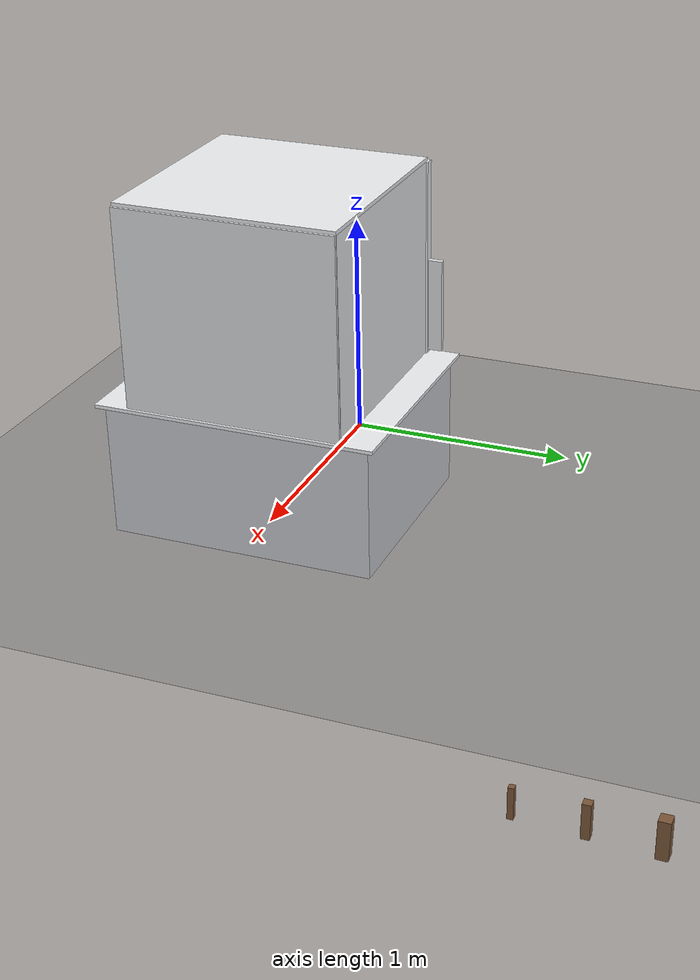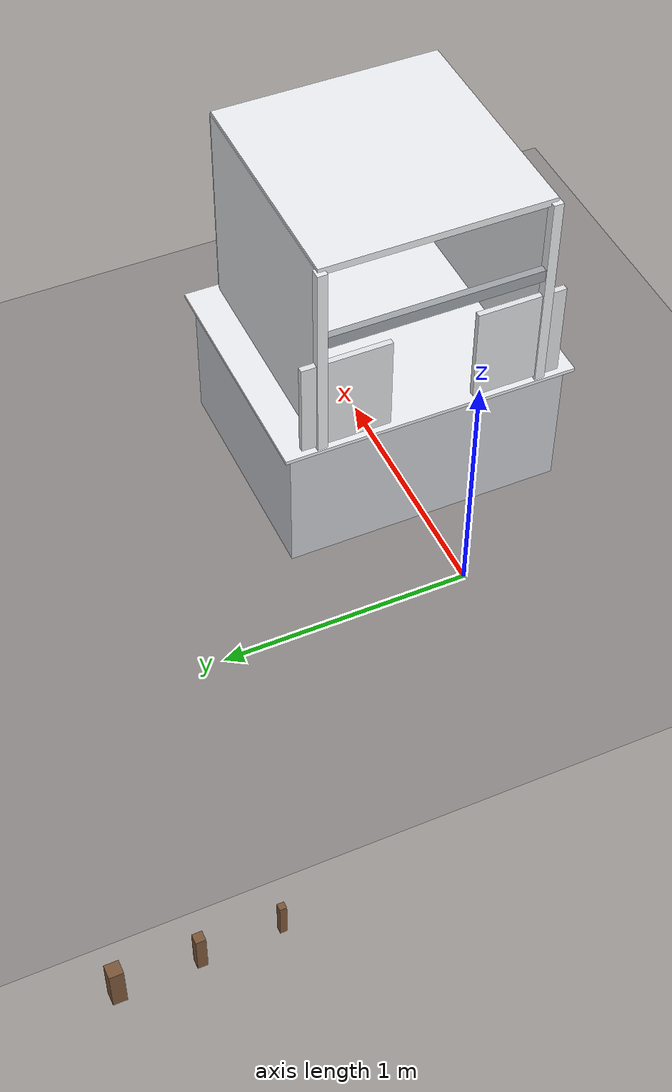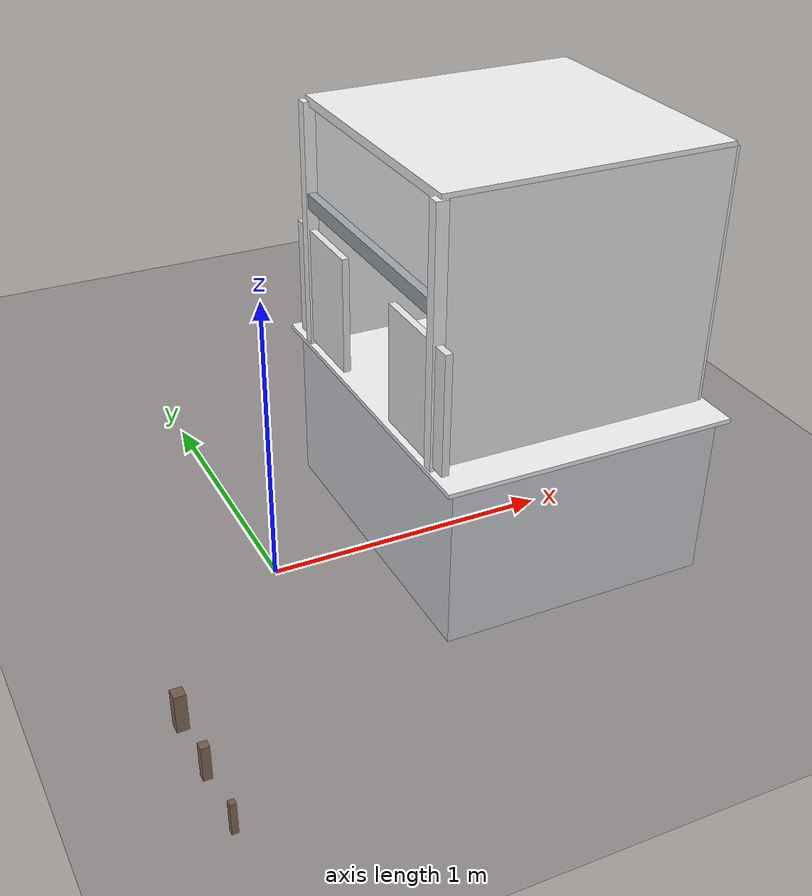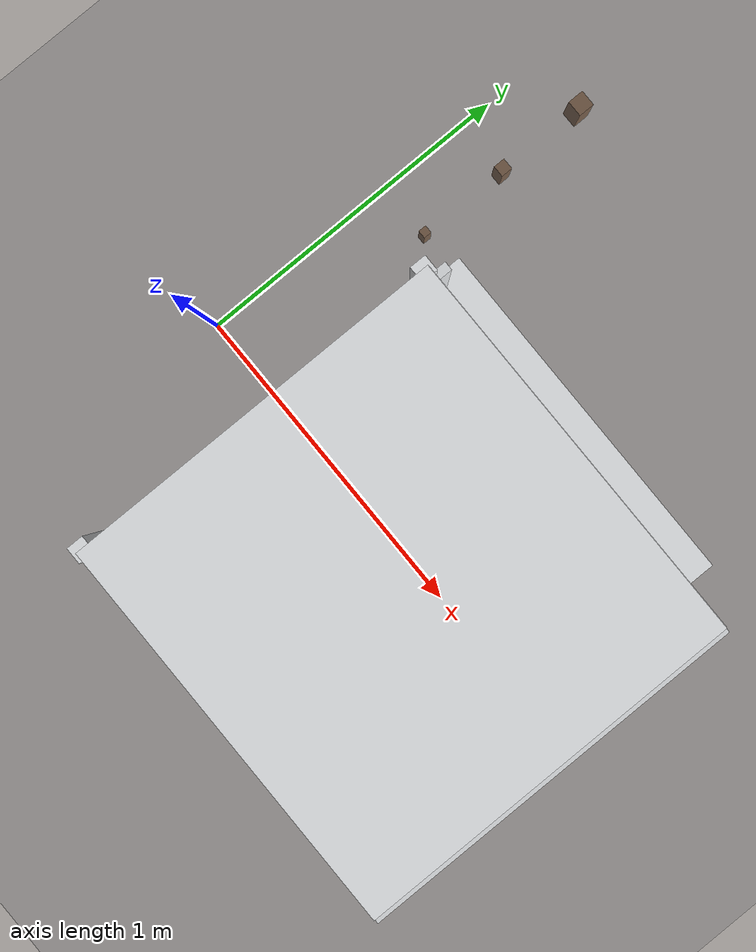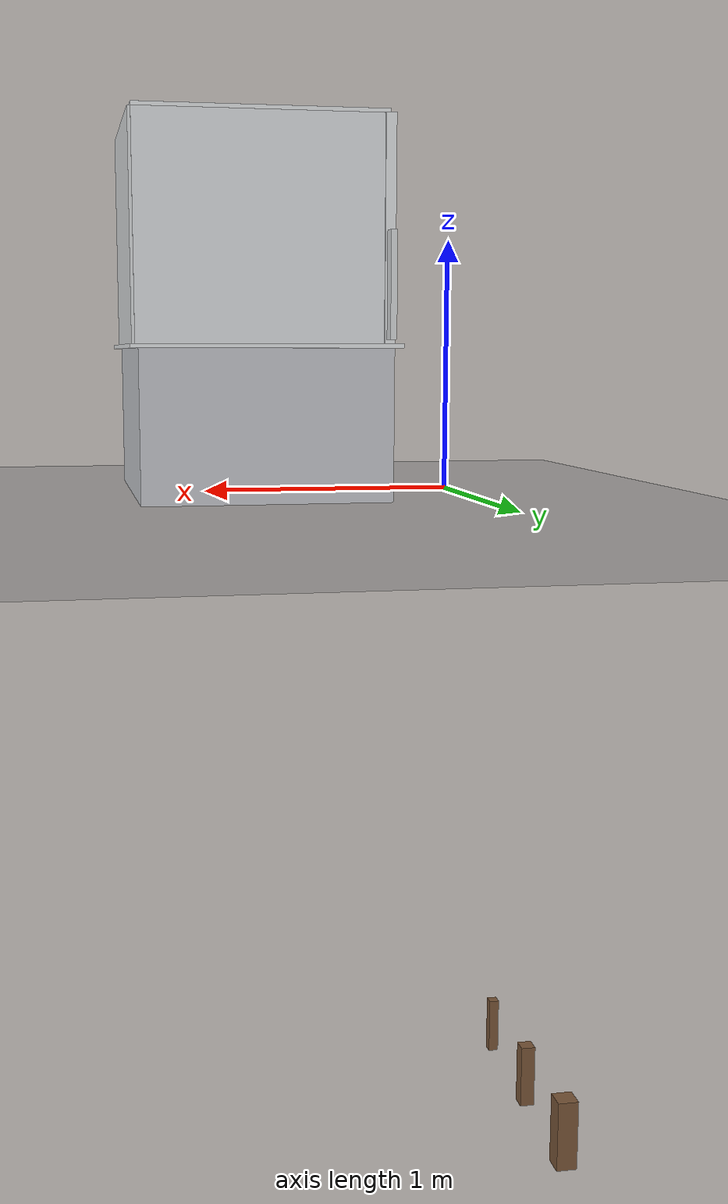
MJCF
<mujoco model="fumehood_tour">
  <size njmax="6000" nconmax="6000"/>
  <asset>
    <texture name="floortex" type="2d" builtin="checker" rgb1="0.46 0.46 0.48" rgb2="0.40 0.40 0.42" width="300" height="300"/>
    <material name="floormat" texture="floortex" texrepeat="10 10" reflectance="0.05"/>
    <material name="bench" rgba="0.62 0.55 0.45 1"/>
  </asset>
  <default>
    <default class="hood">
      <geom contype="8" conaffinity="15" group="0" friction="0.9 0.9 0.001"
            solref="0.02 1" solimp="0.998 0.998 0.001" density="700" rgba="0.92 0.93 0.94 1"/>
    </default>
  </default>
  <worldbody>
    <light name="l_key" pos="0.4 0.5 2.6" dir="0 0 -1" diffuse="0.95 0.95 0.95"/>
    <light name="l_fill" pos="-0.6 -0.7 2.1" dir="0.3 0.3 -1" diffuse="0.5 0.5 0.5"/>
    <light name="l_hood" pos="0.75 0 1.45" dir="0 0 -1" diffuse="0.6 0.6 0.6"/>
    <geom name="floor" type="plane" size="5 5 0.1" pos="0 0 0" material="floormat" contype="8" conaffinity="15"/>
    <geom name="bench_top" class="hood" type="box" pos="0.825 0 0.5775" size="0.50 0.60 0.0075" material="bench"/>
    <geom name="bench_body" class="hood" type="box" pos="0.825 0 0.285" size="0.47 0.57 0.285" rgba="0.80 0.81 0.83 1"/>
    <geom name="hood_side_l" class="hood" type="box" pos="0.825 0.45 1.0" size="0.475 0.012 0.42" rgba="0.90 0.91 0.92 1"/>
    <geom name="hood_side_r" class="hood" type="box" pos="0.825 -0.45 1.0" size="0.475 0.012 0.42" rgba="0.90 0.91 0.92 1"/>
    <geom name="hood_back"  class="hood" type="box" pos="1.30 0 1.0" size="0.012 0.46 0.42" rgba="0.88 0.89 0.90 1"/>
    <geom name="hood_top"   class="hood" type="box" pos="0.825 0 1.42" size="0.475 0.46 0.015"/>
    <geom name="hood_frame_l" class="hood" type="box" pos="0.35 0.45 1.0" size="0.02 0.02 0.42"/>
    <geom name="hood_frame_r" class="hood" type="box" pos="0.35 -0.45 1.0" size="0.02 0.02 0.42"/>
    <!-- SASH RAIL (opaque): bottom edge = opening height -->
    <body name="sash" mocap="true" pos="0.35 0 1.10">
      <geom name="sash_g" class="hood" type="box" size="0.015 0.44 0.025" rgba="0.62 0.64 0.66 1"/>
    </body>
    <body name="jamb_l" mocap="true" pos="0.35 0.35 0.80">
      <geom name="jamb_l_g" class="hood" type="box" size="0.012 0.18 0.20" rgba="0.88 0.89 0.90 1"/>
    </body>
    <body name="jamb_r" mocap="true" pos="0.35 -0.35 0.80">
      <geom name="jamb_r_g" class="hood" type="box" size="0.012 0.18 0.20" rgba="0.88 0.89 0.90 1"/>
    </body>
    <!-- interior obstacle bars (posed per episode) -->
    <body name="protr_s" mocap="true" pos="0 0.8 -2.0">
      <geom name="protr_s_g" class="hood" type="box" size="0.0175 0.0175 0.10" rgba="0.48 0.34 0.22 1"/>
    </body>
    <body name="protr_m" mocap="true" pos="0 1.2 -2.0">
      <geom name="protr_m_g" class="hood" type="box" size="0.025 0.025 0.11" rgba="0.48 0.34 0.22 1"/>
    </body>
    <body name="protr_l" mocap="true" pos="0 1.6 -2.0">
      <geom name="protr_l_g" class="hood" type="box" size="0.035 0.035 0.12" rgba="0.48 0.34 0.22 1"/>
    </body>
  </worldbody>
</mujoco>
